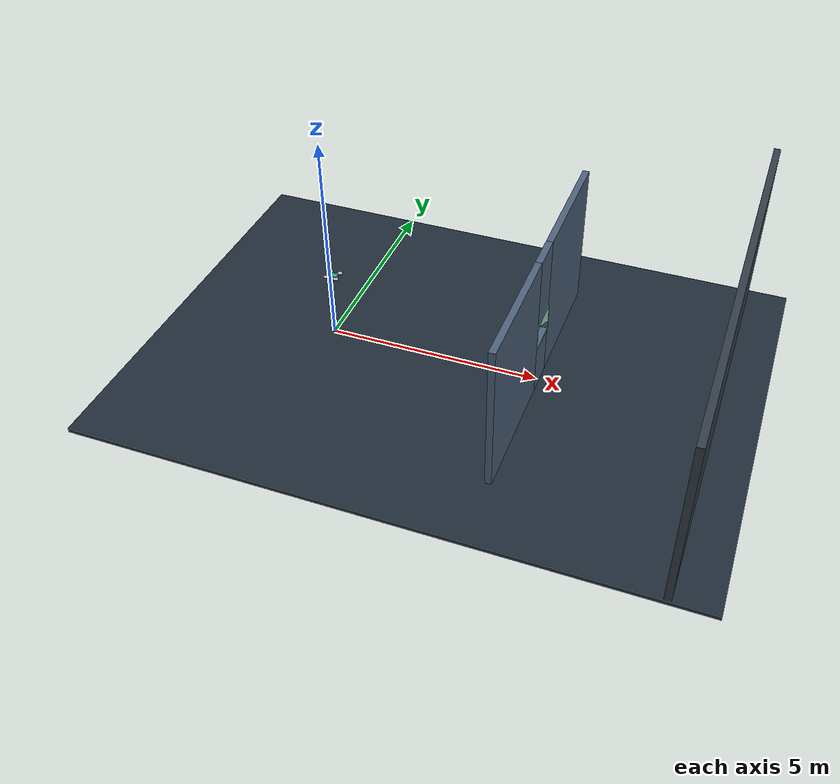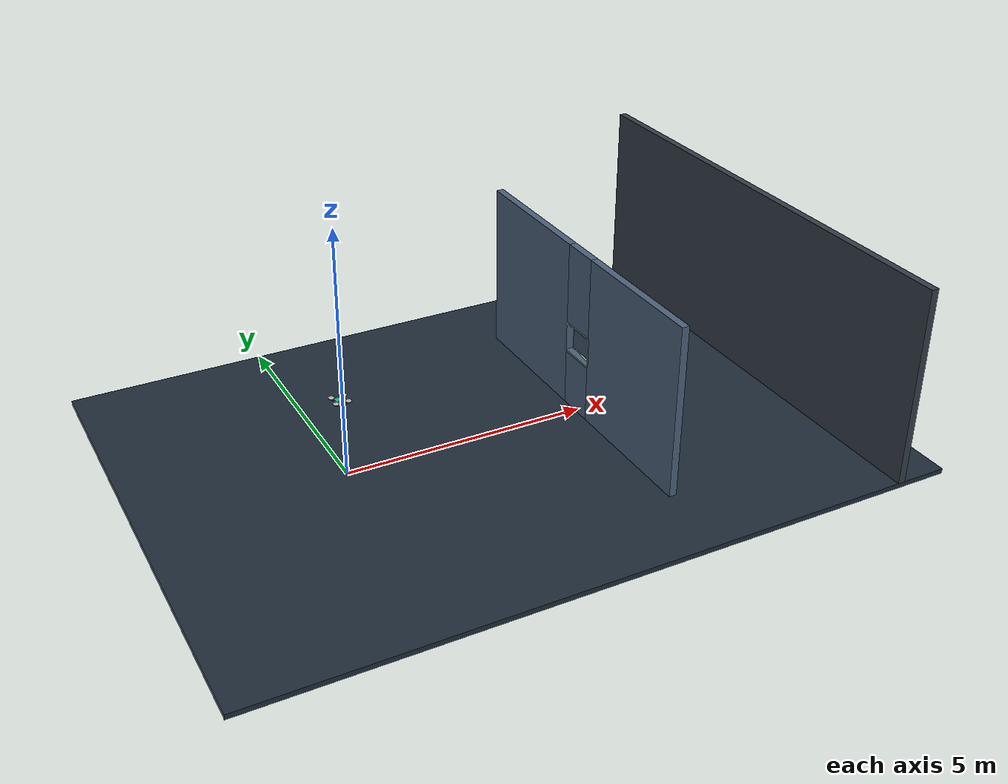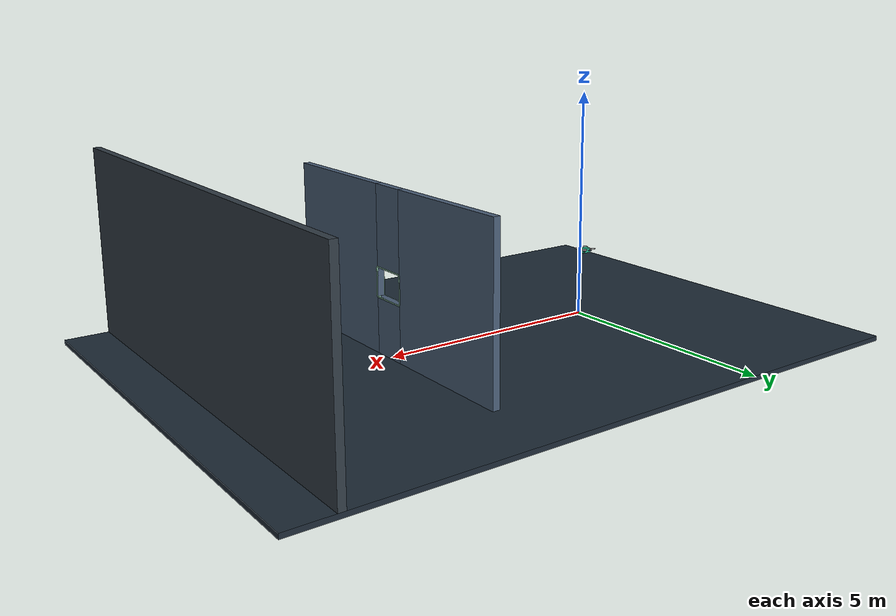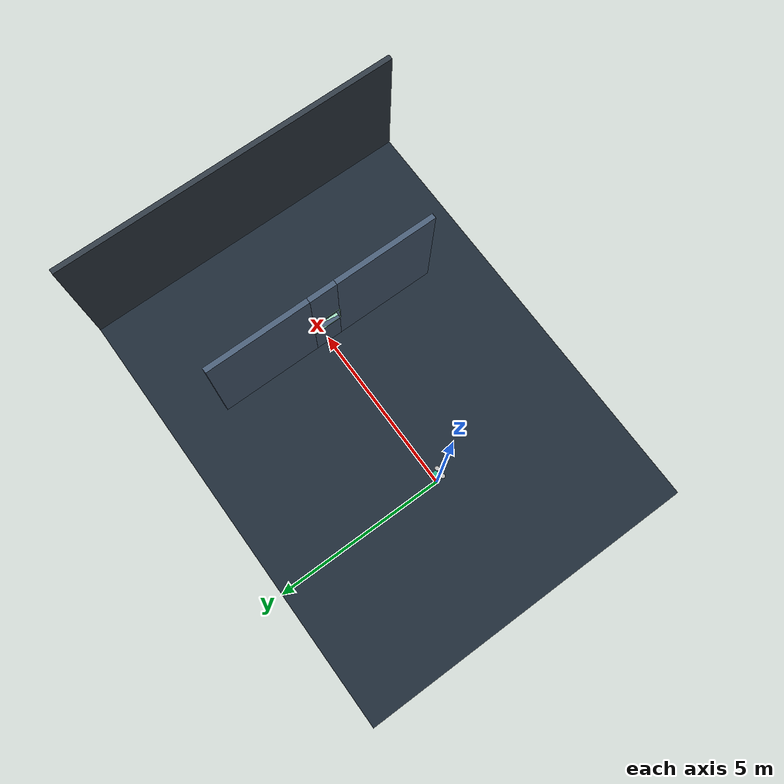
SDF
<sdf version="1.9">
  <world name="aperture">
    <physics name="default" type="ignored">
      <max_step_size>0.002</max_step_size>
      <real_time_factor>1</real_time_factor>
    </physics>
    <gravity>0 0 -9.81</gravity>
    <plugin filename="gz-sim-physics-system" name="gz::sim::systems::Physics" />
    <plugin filename="gz-sim-user-commands-system" name="gz::sim::systems::UserCommands" />
    <plugin filename="gz-sim-scene-broadcaster-system" name="gz::sim::systems::SceneBroadcaster" />
    <plugin filename="gz-sim-sensors-system" name="gz::sim::systems::Sensors">
      <render_engine>ogre2</render_engine>
    </plugin>
    <plugin filename="gz-sim-imu-system" name="gz::sim::systems::Imu" />
    <scene>
      <ambient>0.075 0.075 0.075 1</ambient>
      <background>0.06 0.08 0.12 1</background>
    </scene>
    <light name="sun" type="directional">
      <pose>0 0 8 0 0 0</pose>
      <diffuse>0.15 0.15 0.15 1</diffuse>
      <direction>-.3 .2 -1</direction>
      <cast_shadows>true</cast_shadows>
    </light>
    <model name="room">
      <static>true</static>
      <link name="structure">
        <collision name="floor_collision">
          <pose>3 0 -0.05 0 0 0</pose>
          <geometry>
            <box>
              <size>14 10 0.1</size>
            </box>
          </geometry>
        </collision>
        <visual name="floor_visual">
          <pose>3 0 -0.05 0 0 0</pose>
          <geometry>
            <box>
              <size>14 10 0.1</size>
            </box>
          </geometry>
          <material>
            <diffuse>0.12 0.17 0.22 1</diffuse>
            <ambient>0.12 0.17 0.22 1</ambient>
          </material>
        </visual>
        <collision name="back_wall_collision">
          <pose>9 0 2 0 0 0</pose>
          <geometry>
            <box>
              <size>0.15 10 4</size>
            </box>
          </geometry>
        </collision>
        <visual name="back_wall_visual">
          <pose>9 0 2 0 0 0</pose>
          <geometry>
            <box>
              <size>0.15 10 4</size>
            </box>
          </geometry>
          <material>
            <diffuse>0.2 0.24 0.28 1</diffuse>
            <ambient>0.2 0.24 0.28 1</ambient>
          </material>
        </visual>
      </link>
    </model>
    <model name="window_wall">
      <static>true</static>
      <pose>5.0 0.0 1.5 0 0 0</pose>
      <link name="wall">
        <collision name="left_collision">
          <pose>0 -1.9 0 0 0 0</pose>
          <geometry>
            <box>
              <size>0.15 3 4</size>
            </box>
          </geometry>
        </collision>
        <visual name="left_visual">
          <pose>0 -1.9 0 0 0 0</pose>
          <geometry>
            <box>
              <size>0.15 3 4</size>
            </box>
          </geometry>
          <material>
            <diffuse>0.3 0.38 0.48 1</diffuse>
            <ambient>0.3 0.38 0.48 1</ambient>
          </material>
        </visual>
        <collision name="right_collision">
          <pose>0 1.9 0 0 0 0</pose>
          <geometry>
            <box>
              <size>0.15 3 4</size>
            </box>
          </geometry>
        </collision>
        <visual name="right_visual">
          <pose>0 1.9 0 0 0 0</pose>
          <geometry>
            <box>
              <size>0.15 3 4</size>
            </box>
          </geometry>
          <material>
            <diffuse>0.3 0.38 0.48 1</diffuse>
            <ambient>0.3 0.38 0.48 1</ambient>
          </material>
        </visual>
        <collision name="bottom_collision">
          <pose>0 0 -1.15 0 0 0</pose>
          <geometry>
            <box>
              <size>0.15 0.8 1.7</size>
            </box>
          </geometry>
        </collision>
        <visual name="bottom_visual">
          <pose>0 0 -1.15 0 0 0</pose>
          <geometry>
            <box>
              <size>0.15 0.8 1.7</size>
            </box>
          </geometry>
          <material>
            <diffuse>0.3 0.38 0.48 1</diffuse>
            <ambient>0.3 0.38 0.48 1</ambient>
          </material>
        </visual>
        <collision name="top_collision">
          <pose>0 0 1.15 0 0 0</pose>
          <geometry>
            <box>
              <size>0.15 0.8 1.7</size>
            </box>
          </geometry>
        </collision>
        <visual name="top_visual">
          <pose>0 0 1.15 0 0 0</pose>
          <geometry>
            <box>
              <size>0.15 0.8 1.7</size>
            </box>
          </geometry>
          <material>
            <diffuse>0.3 0.38 0.48 1</diffuse>
            <ambient>0.3 0.38 0.48 1</ambient>
          </material>
        </visual>
        <collision name="trim_left_collision">
          <pose>0 -0.41250000000000003 0 0 0 0</pose>
          <geometry>
            <box>
              <size>0.16999999999999998 0.025 0.6</size>
            </box>
          </geometry>
        </collision>
        <visual name="trim_left_visual">
          <pose>0 -0.41250000000000003 0 0 0 0</pose>
          <geometry>
            <box>
              <size>0.16999999999999998 0.025 0.6</size>
            </box>
          </geometry>
          <material>
            <diffuse>0.65 0.9 0.78 1</diffuse>
            <ambient>0.65 0.9 0.78 1</ambient>
          </material>
        </visual>
        <collision name="trim_right_collision">
          <pose>0 0.41250000000000003 0 0 0 0</pose>
          <geometry>
            <box>
              <size>0.16999999999999998 0.025 0.6</size>
            </box>
          </geometry>
        </collision>
        <visual name="trim_right_visual">
          <pose>0 0.41250000000000003 0 0 0 0</pose>
          <geometry>
            <box>
              <size>0.16999999999999998 0.025 0.6</size>
            </box>
          </geometry>
          <material>
            <diffuse>0.65 0.9 0.78 1</diffuse>
            <ambient>0.65 0.9 0.78 1</ambient>
          </material>
        </visual>
        <collision name="trim_top_collision">
          <pose>0 0 0.3125 0 0 0</pose>
          <geometry>
            <box>
              <size>0.16999999999999998 0.8 0.025</size>
            </box>
          </geometry>
        </collision>
        <visual name="trim_top_visual">
          <pose>0 0 0.3125 0 0 0</pose>
          <geometry>
            <box>
              <size>0.16999999999999998 0.8 0.025</size>
            </box>
          </geometry>
          <material>
            <diffuse>0.65 0.9 0.78 1</diffuse>
            <ambient>0.65 0.9 0.78 1</ambient>
          </material>
        </visual>
        <collision name="trim_bottom_collision">
          <pose>0 0 -0.3125 0 0 0</pose>
          <geometry>
            <box>
              <size>0.16999999999999998 0.8 0.025</size>
            </box>
          </geometry>
        </collision>
        <visual name="trim_bottom_visual">
          <pose>0 0 -0.3125 0 0 0</pose>
          <geometry>
            <box>
              <size>0.16999999999999998 0.8 0.025</size>
            </box>
          </geometry>
          <material>
            <diffuse>0.65 0.9 0.78 1</diffuse>
            <ambient>0.65 0.9 0.78 1</ambient>
          </material>
        </visual>
      </link>
    </model>
    <model name="drone">
      <pose>0.0 0.15 1.5 0 0 0</pose>
      <link name="base_link">
        <gravity>false</gravity>
        <inertial>
          <mass>1.0</mass>
          <inertia>
            <ixx>0.012</ixx>
            <iyy>0.012</iyy>
            <izz>0.022</izz>
            <ixy>0</ixy>
            <ixz>0</ixz>
            <iyz>0</iyz>
          </inertia>
        </inertial>
        <visual name="body_visual">
          <pose>0 0 0 0 0 0</pose>
          <geometry>
            <box>
              <size>0.2 0.13 0.1</size>
            </box>
          </geometry>
          <material>
            <diffuse>0.15 0.7 0.55 1</diffuse>
            <ambient>0.15 0.7 0.55 1</ambient>
          </material>
        </visual>
        <collision name="vehicle_envelope">
          <geometry>
            <box>
              <size>0.36 0.36 0.16</size>
            </box>
          </geometry>
        </collision>
        <visual name="arm_-0.12_-0.12_visual">
          <pose>0 0 0 0 0 -2.356194490192345</pose>
          <geometry>
            <box>
              <size>0.3 0.025 0.025</size>
            </box>
          </geometry>
          <material>
            <diffuse>0.2 0.25 0.3 1</diffuse>
            <ambient>0.2 0.25 0.3 1</ambient>
          </material>
        </visual>
        <visual name="prop_-0.12_-0.12">
          <pose>-0.12 -0.12 .04 0 0 0</pose>
          <geometry>
            <cylinder>
              <radius>0.06</radius>
              <length>0.008</length>
            </cylinder>
          </geometry>
        </visual>
        <visual name="arm_-0.12_0.12_visual">
          <pose>0 0 0 0 0 2.356194490192345</pose>
          <geometry>
            <box>
              <size>0.3 0.025 0.025</size>
            </box>
          </geometry>
          <material>
            <diffuse>0.2 0.25 0.3 1</diffuse>
            <ambient>0.2 0.25 0.3 1</ambient>
          </material>
        </visual>
        <visual name="prop_-0.12_0.12">
          <pose>-0.12 0.12 .04 0 0 0</pose>
          <geometry>
            <cylinder>
              <radius>0.06</radius>
              <length>0.008</length>
            </cylinder>
          </geometry>
        </visual>
        <visual name="arm_0.12_-0.12_visual">
          <pose>0 0 0 0 0 -0.7853981633974483</pose>
          <geometry>
            <box>
              <size>0.3 0.025 0.025</size>
            </box>
          </geometry>
          <material>
            <diffuse>0.2 0.25 0.3 1</diffuse>
            <ambient>0.2 0.25 0.3 1</ambient>
          </material>
        </visual>
        <visual name="prop_0.12_-0.12">
          <pose>0.12 -0.12 .04 0 0 0</pose>
          <geometry>
            <cylinder>
              <radius>0.06</radius>
              <length>0.008</length>
            </cylinder>
          </geometry>
        </visual>
        <visual name="arm_0.12_0.12_visual">
          <pose>0 0 0 0 0 0.7853981633974483</pose>
          <geometry>
            <box>
              <size>0.3 0.025 0.025</size>
            </box>
          </geometry>
          <material>
            <diffuse>0.2 0.25 0.3 1</diffuse>
            <ambient>0.2 0.25 0.3 1</ambient>
          </material>
        </visual>
        <visual name="prop_0.12_0.12">
          <pose>0.12 0.12 .04 0 0 0</pose>
          <geometry>
            <cylinder>
              <radius>0.06</radius>
              <length>0.008</length>
            </cylinder>
          </geometry>
        </visual>
        <sensor name="rgbd" type="rgbd_camera">
          <pose>.18 0 .03 0 0 0</pose>
          <always_on>true</always_on>
          <update_rate>30</update_rate>
          <topic>/drone/rgbd</topic>
          <gz_frame_id>camera_optical_frame</gz_frame_id>
          <camera>
            <horizontal_fov>1.5707963</horizontal_fov>
            <image>
              <width>640</width>
              <height>480</height>
              <format>R8G8B8</format>
            </image>
            <clip>
              <near>0.05</near>
              <far>20</far>
            </clip>
            <depth_camera>
              <clip>
                <near>0.05</near>
                <far>20</far>
              </clip>
            </depth_camera>
          </camera>
        </sensor>
        <sensor name="imu" type="imu">
          <always_on>true</always_on>
          <update_rate>100</update_rate>
          <topic>/drone/imu</topic>
          <gz_frame_id>imu_link</gz_frame_id>
        </sensor>
      </link>
      <plugin filename="gz-sim-velocity-control-system" name="gz::sim::systems::VelocityControl">
        <topic>/drone/cmd_vel</topic>
      </plugin>
      <plugin filename="gz-sim-odometry-publisher-system" name="gz::sim::systems::OdometryPublisher">
        <odom_frame>odom</odom_frame>
        <robot_base_frame>base_link</robot_base_frame>
        <odom_topic>/drone/odom</odom_topic>
        <odom_publish_frequency>50</odom_publish_frequency>
        <dimensions>3</dimensions>
      </plugin>
    </model>
  </world>
</sdf>
